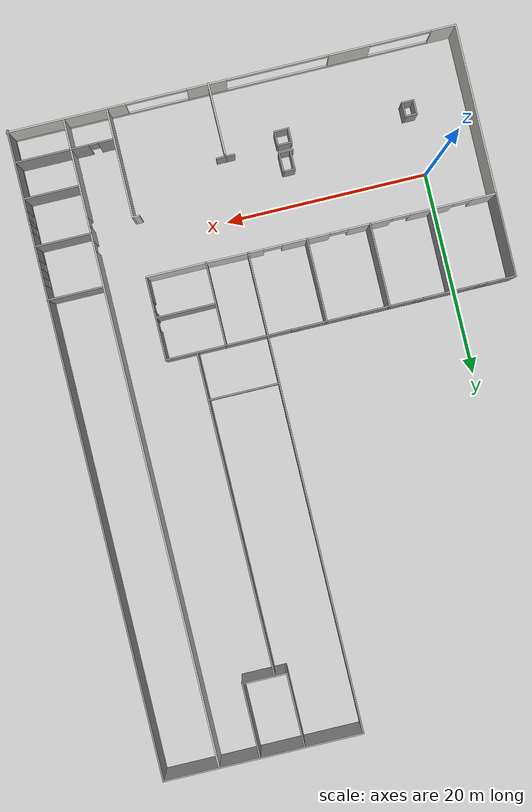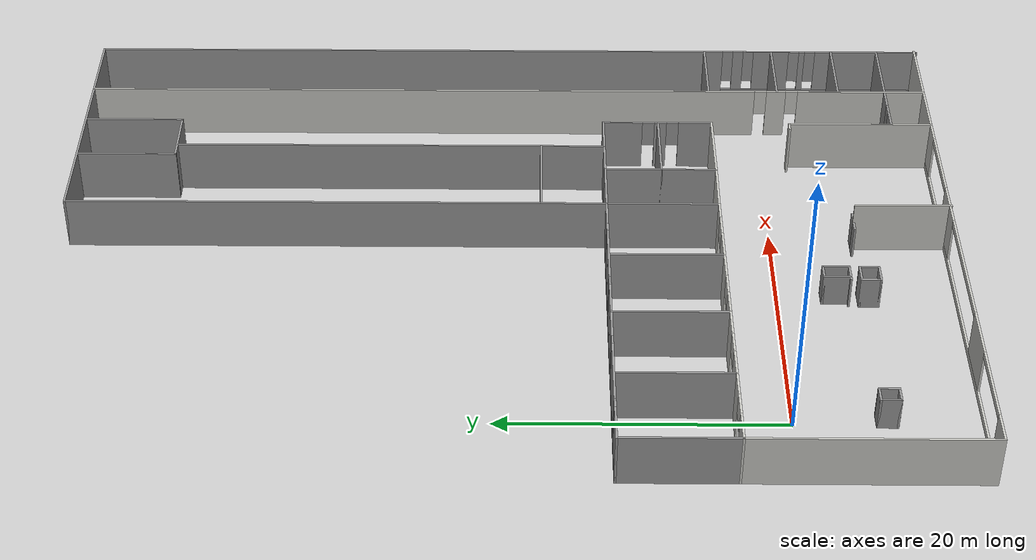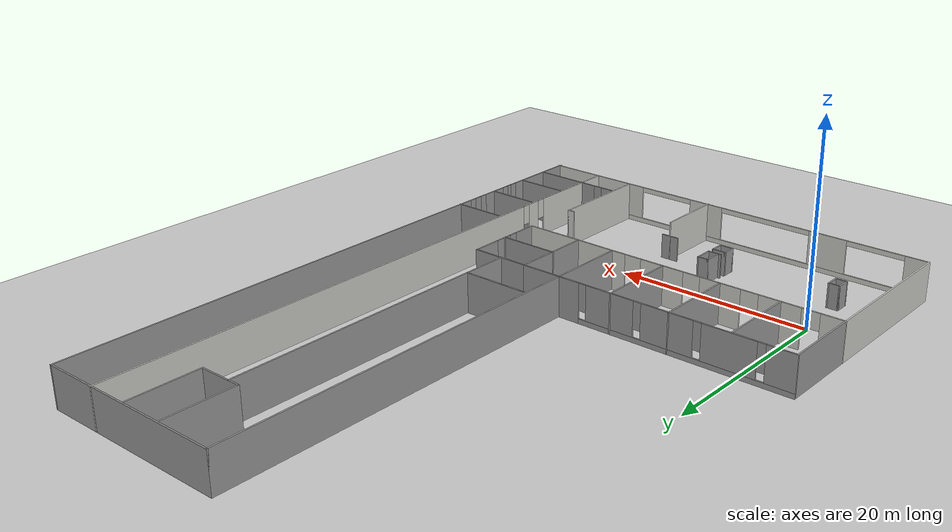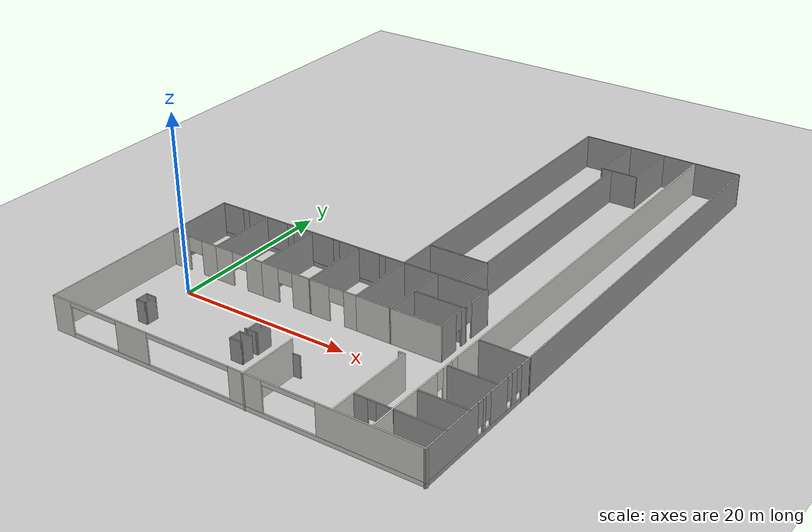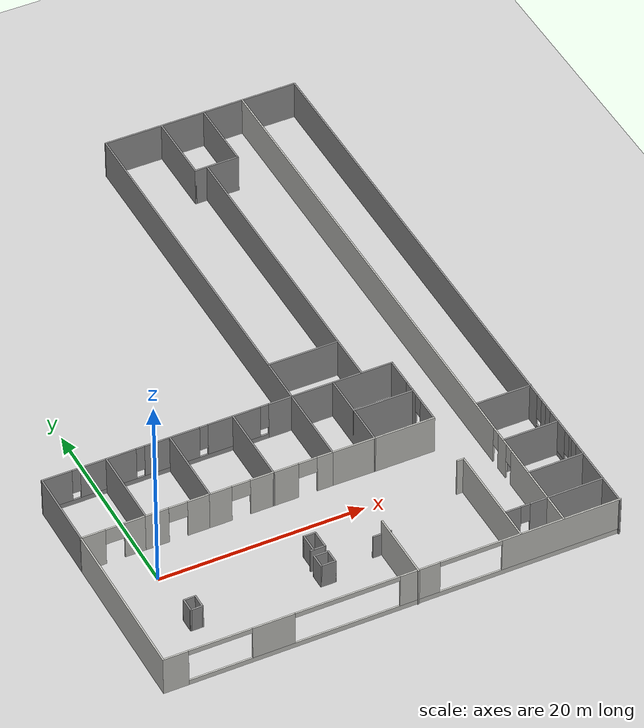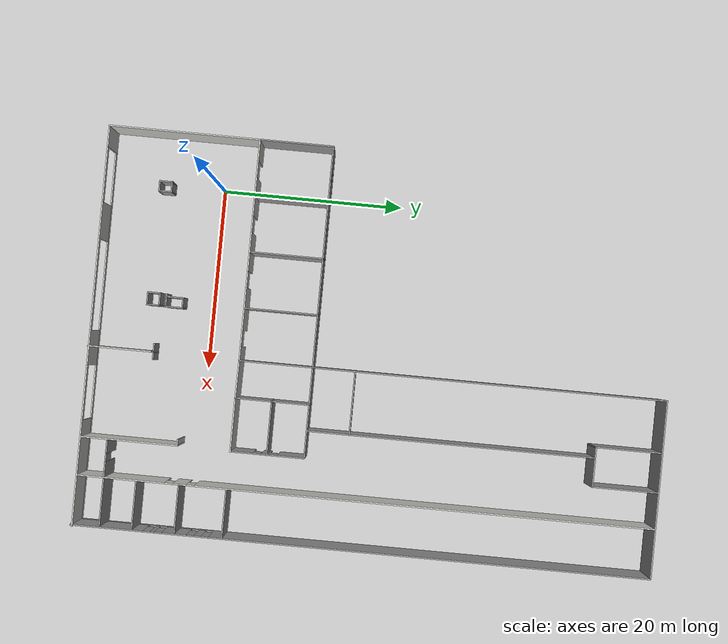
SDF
<sdf version="1.6">
 <world name="default">
  <model name="ground_plane">
   <static>1</static>
   <link name="link">
    <collision name="collision">
     <geometry><plane><normal>0 0 1</normal><size>100 100</size></plane></geometry>
     <surface><friction><ode><mu>100</mu><mu2>50</mu2></ode></friction></surface>
    </collision>
    <visual name="visual">
     <cast_shadows>0</cast_shadows>
     <geometry><plane><normal>0 0 1</normal><size>100 100</size></plane></geometry>
     <material>
      <script><uri>file://media/materials/scripts/gazebo.material</uri><name>Gazebo/Grey</name></script>
     </material>
    </visual>
   </link>
  </model>
  <model name="zjwall">
   <pose>16.5 19.0001 0 0 0 -1.5708</pose>
   <link name="Wall_0">
    <pose>0.0005 21.815 0 0 -0 0</pose>
    <visual name="Wall_0_Visual_0">
     <pose>-7.59115 0 2 0 -0 0</pose>
     <geometry><box><size>48.4977 0.15 4</size></box></geometry>
     <material>
      <script><uri>file://media/materials/scripts/gazebo.material</uri><name>Gazebo/Grey</name></script>
      <ambient>1 1 1 1</ambient>
     </material>
     <meta><layer>0</layer></meta>
    </visual>
    <collision name="Wall_0_Collision_0">
     <geometry><box><size>48.4977 0.15 4</size></box></geometry>
     <pose>-7.59115 0 2 0 -0 0</pose>
    </collision>
    <visual name="Wall_0_Visual_1">
     <pose>24.2489 0 0.25 0 -0 0</pose>
     <geometry><box><size>15.1823 0.15 0.5</size></box></geometry>
     <material>
      <script><uri>file://media/materials/scripts/gazebo.material</uri><name>Gazebo/Grey</name></script>
      <ambient>1 1 1 1</ambient>
     </material>
     <meta><layer>0</layer></meta>
    </visual>
    <collision name="Wall_0_Collision_1">
     <geometry><box><size>15.1823 0.15 0.5</size></box></geometry>
     <pose>24.2489 0 0.25 0 -0 0</pose>
    </collision>
    <visual name="Wall_0_Visual_2">
     <pose>17.8571 0 2.25 0 -0 0</pose>
     <geometry><box><size>0.798874 0.15 3.5</size></box></geometry>
     <material>
      <script><uri>file://media/materials/scripts/gazebo.material</uri><name>Gazebo/Grey</name></script>
      <ambient>1 1 1 1</ambient>
     </material>
     <meta><layer>0</layer></meta>
    </visual>
    <collision name="Wall_0_Collision_2">
     <geometry><box><size>0.798874 0.15 3.5</size></box></geometry>
     <pose>17.8571 0 2.25 0 -0 0</pose>
    </collision>
    <visual name="Wall_0_Visual_3">
     <pose>20.4331 0 2.25 0 -0 0</pose>
     <geometry><box><size>2.75305 0.15 3.5</size></box></geometry>
     <material>
      <script><uri>file://media/materials/scripts/gazebo.material</uri><name>Gazebo/Grey</name></script>
      <ambient>1 1 1 1</ambient>
     </material>
     <meta><layer>0</layer></meta>
    </visual>
    <collision name="Wall_0_Collision_3">
     <geometry><box><size>2.75305 0.15 3.5</size></box></geometry>
     <pose>20.4331 0 2.25 0 -0 0</pose>
    </collision>
    <visual name="Wall_0_Visual_4">
     <pose>22.8314 0 2.25 0 -0 0</pose>
     <geometry><box><size>0.443569 0.15 3.5</size></box></geometry>
     <material>
      <script><uri>file://media/materials/scripts/gazebo.material</uri><name>Gazebo/Grey</name></script>
      <ambient>1 1 1 1</ambient>
     </material>
     <meta><layer>0</layer></meta>
    </visual>
    <collision name="Wall_0_Collision_4">
     <geometry><box><size>0.443569 0.15 3.5</size></box></geometry>
     <pose>22.8314 0 2.25 0 -0 0</pose>
    </collision>
    <visual name="Wall_0_Visual_5">
     <pose>27.8466 0 2.25 0 -0 0</pose>
     <geometry><box><size>7.9868 0.15 3.5</size></box></geometry>
     <material>
      <script><uri>file://media/materials/scripts/gazebo.material</uri><name>Gazebo/Grey</name></script>
      <ambient>1 1 1 1</ambient>
     </material>
     <meta><layer>0</layer></meta>
    </visual>
    <collision name="Wall_0_Collision_5">
     <geometry><box><size>7.9868 0.15 3.5</size></box></geometry>
     <pose>27.8466 0 2.25 0 -0 0</pose>
    </collision>
    <visual name="Wall_0_Visual_6">
     <pose>17.0577 0 2.65 0 -0 0</pose>
     <geometry><box><size>0.8 0.15 2.7</size></box></geometry>
     <material>
      <script><uri>file://media/materials/scripts/gazebo.material</uri><name>Gazebo/Grey</name></script>
      <ambient>1 1 1 1</ambient>
     </material>
     <meta><layer>0</layer></meta>
    </visual>
    <collision name="Wall_0_Collision_6">
     <geometry><box><size>0.8 0.15 2.7</size></box></geometry>
     <pose>17.0577 0 2.65 0 -0 0</pose>
    </collision>
    <visual name="Wall_0_Visual_7">
     <pose>18.6566 0 2.65 0 -0 0</pose>
     <geometry><box><size>0.8 0.15 2.7</size></box></geometry>
     <material>
      <script><uri>file://media/materials/scripts/gazebo.material</uri><name>Gazebo/Grey</name></script>
      <ambient>1 1 1 1</ambient>
     </material>
     <meta><layer>0</layer></meta>
    </visual>
    <collision name="Wall_0_Collision_7">
     <geometry><box><size>0.8 0.15 2.7</size></box></geometry>
     <pose>18.6566 0 2.65 0 -0 0</pose>
    </collision>
    <visual name="Wall_0_Visual_8">
     <pose>22.2096 0 2.65 0 -0 0</pose>
     <geometry><box><size>0.8 0.15 2.7</size></box></geometry>
     <material>
      <script><uri>file://media/materials/scripts/gazebo.material</uri><name>Gazebo/Grey</name></script>
      <ambient>1 1 1 1</ambient>
     </material>
     <meta><layer>0</layer></meta>
    </visual>
    <collision name="Wall_0_Collision_8">
     <geometry><box><size>0.8 0.15 2.7</size></box></geometry>
     <pose>22.2096 0 2.65 0 -0 0</pose>
    </collision>
    <visual name="Wall_0_Visual_9">
     <pose>23.4532 0 2.65 0 -0 0</pose>
     <geometry><box><size>0.8 0.15 2.7</size></box></geometry>
     <material>
      <script><uri>file://media/materials/scripts/gazebo.material</uri><name>Gazebo/Grey</name></script>
      <ambient>1 1 1 1</ambient>
     </material>
     <meta><layer>0</layer></meta>
    </visual>
    <collision name="Wall_0_Collision_9">
     <geometry><box><size>0.8 0.15 2.7</size></box></geometry>
     <pose>23.4532 0 2.65 0 -0 0</pose>
    </collision>
   </link>
   <link name="Wall_104">
    <collision name="Wall_104_Collision">
     <geometry><box><size>1.5 0.15 2.5</size></box></geometry>
     <pose>0 0 1.25 0 -0 0</pose>
    </collision>
    <visual name="Wall_104_Visual">
     <pose>0 0 1.25 0 -0 0</pose>
     <geometry><box><size>1.5 0.15 2.5</size></box></geometry>
     <material>
      <script><uri>file://media/materials/scripts/gazebo.material</uri><name>Gazebo/Grey</name></script>
      <ambient>1 1 1 1</ambient>
     </material>
     <meta><layer>0</layer></meta>
    </visual>
    <pose>23.9911 -3.55705 0 0 -0 1.5708</pose>
   </link>
   <link name="Wall_105">
    <collision name="Wall_105_Collision">
     <geometry><box><size>2 0.15 2.5</size></box></geometry>
     <pose>0 0 1.25 0 -0 0</pose>
    </collision>
    <visual name="Wall_105_Visual">
     <pose>0 0 1.25 0 -0 0</pose>
     <geometry><box><size>2 0.15 2.5</size></box></geometry>
     <material>
      <script><uri>file://media/materials/scripts/gazebo.material</uri><name>Gazebo/Grey</name></script>
      <ambient>1 1 1 1</ambient>
     </material>
     <meta><layer>0</layer></meta>
    </visual>
    <pose>23.0661 -2.88205 0 0 -0 3.14159</pose>
   </link>
   <link name="Wall_107">
    <collision name="Wall_107_Collision">
     <geometry><box><size>1.25 0.15 2.5</size></box></geometry>
     <pose>0 0 1.25 0 -0 0</pose>
    </collision>
    <visual name="Wall_107_Visual">
     <pose>0 0 1.25 0 -0 0</pose>
     <geometry><box><size>1.25 0.15 2.5</size></box></geometry>
     <material>
      <script><uri>file://media/materials/scripts/gazebo.material</uri><name>Gazebo/Grey</name></script>
      <ambient>1 1 1 1</ambient>
     </material>
     <meta><layer>0</layer></meta>
    </visual>
    <pose>22.1411 -3.43205 0 0 -0 -1.5708</pose>
   </link>
   <link name="Wall_108">
    <collision name="Wall_108_Collision">
     <geometry><box><size>2 0.15 2.5</size></box></geometry>
     <pose>0 0 1.25 0 -0 0</pose>
    </collision>
    <visual name="Wall_108_Visual">
     <pose>0 0 1.25 0 -0 0</pose>
     <geometry><box><size>2 0.15 2.5</size></box></geometry>
     <material>
      <script><uri>file://media/materials/scripts/gazebo.material</uri><name>Gazebo/Grey</name></script>
      <ambient>1 1 1 1</ambient>
     </material>
     <meta><layer>0</layer></meta>
    </visual>
    <pose>23.0661 -3.98205 0 0 -0 0</pose>
   </link>
   <link name="Wall_11">
    <pose>31.6155 0 0 0 -0 1.5708</pose>
    <visual name="Wall_11_Visual_0">
     <pose>-20.7907 0 2 0 -0 0</pose>
     <geometry><box><size>2.41853 0.15 4</size></box></geometry>
     <material>
      <script><uri>file://media/materials/scripts/gazebo.material</uri><name>Gazebo/CeilingTiled</name></script>
      <ambient>1 1 1 1</ambient>
     </material>
     <meta><layer>0</layer></meta>
    </visual>
    <collision name="Wall_11_Collision_0">
     <geometry><box><size>2.41853 0.15 4</size></box></geometry>
     <pose>-20.7907 0 2 0 -0 0</pose>
    </collision>
    <visual name="Wall_11_Visual_1">
     <pose>1.20926 0 0.25 0 -0 0</pose>
     <geometry><box><size>41.5815 0.15 0.5</size></box></geometry>
     <material>
      <script><uri>file://media/materials/scripts/gazebo.material</uri><name>Gazebo/CeilingTiled</name></script>
      <ambient>1 1 1 1</ambient>
     </material>
     <meta><layer>0</layer></meta>
    </visual>
    <collision name="Wall_11_Collision_1">
     <geometry><box><size>41.5815 0.15 0.5</size></box></geometry>
     <pose>1.20926 0 0.25 0 -0 0</pose>
    </collision>
    <visual name="Wall_11_Visual_2">
     <pose>-11.559 0 2.25 0 -0 0</pose>
     <geometry><box><size>4.04501 0.15 3.5</size></box></geometry>
     <material>
      <script><uri>file://media/materials/scripts/gazebo.material</uri><name>Gazebo/CeilingTiled</name></script>
      <ambient>1 1 1 1</ambient>
     </material>
     <meta><layer>0</layer></meta>
    </visual>
    <collision name="Wall_11_Collision_2">
     <geometry><box><size>4.04501 0.15 3.5</size></box></geometry>
     <pose>-11.559 0 2.25 0 -0 0</pose>
    </collision>
    <visual name="Wall_11_Visual_3">
     <pose>2.39649 0 2.25 0 -0 0</pose>
     <geometry><box><size>3.8659 0.15 3.5</size></box></geometry>
     <material>
      <script><uri>file://media/materials/scripts/gazebo.material</uri><name>Gazebo/CeilingTiled</name></script>
      <ambient>1 1 1 1</ambient>
     </material>
     <meta><layer>0</layer></meta>
    </visual>
    <collision name="Wall_11_Collision_3">
     <geometry><box><size>3.8659 0.15 3.5</size></box></geometry>
     <pose>2.39649 0 2.25 0 -0 0</pose>
    </collision>
    <visual name="Wall_11_Visual_4">
     <pose>16.1647 0 2.25 0 -0 0</pose>
     <geometry><box><size>11.6706 0.15 3.5</size></box></geometry>
     <material>
      <script><uri>file://media/materials/scripts/gazebo.material</uri><name>Gazebo/CeilingTiled</name></script>
      <ambient>1 1 1 1</ambient>
     </material>
     <meta><layer>0</layer></meta>
    </visual>
    <collision name="Wall_11_Collision_4">
     <geometry><box><size>11.6706 0.15 3.5</size></box></geometry>
     <pose>16.1647 0 2.25 0 -0 0</pose>
    </collision>
    <visual name="Wall_11_Visual_5">
     <pose>-16.5815 0 3.75 0 -0 0</pose>
     <geometry><box><size>6 0.15 0.5</size></box></geometry>
     <material>
      <script><uri>file://media/materials/scripts/gazebo.material</uri><name>Gazebo/CeilingTiled</name></script>
      <ambient>1 1 1 1</ambient>
     </material>
     <meta><layer>0</layer></meta>
    </visual>
    <collision name="Wall_11_Collision_5">
     <geometry><box><size>6 0.15 0.5</size></box></geometry>
     <pose>-16.5815 0 3.75 0 -0 0</pose>
    </collision>
    <visual name="Wall_11_Visual_6">
     <pose>-4.53646 0 3.75 0 -0 0</pose>
     <geometry><box><size>10 0.15 0.5</size></box></geometry>
     <material>
      <script><uri>file://media/materials/scripts/gazebo.material</uri><name>Gazebo/CeilingTiled</name></script>
      <ambient>1 1 1 1</ambient>
     </material>
     <meta><layer>0</layer></meta>
    </visual>
    <collision name="Wall_11_Collision_6">
     <geometry><box><size>10 0.15 0.5</size></box></geometry>
     <pose>-4.53646 0 3.75 0 -0 0</pose>
    </collision>
    <visual name="Wall_11_Visual_7">
     <pose>7.32944 0 3.75 0 -0 0</pose>
     <geometry><box><size>6 0.15 0.5</size></box></geometry>
     <material>
      <script><uri>file://media/materials/scripts/gazebo.material</uri><name>Gazebo/CeilingTiled</name></script>
      <ambient>1 1 1 1</ambient>
     </material>
     <meta><layer>0</layer></meta>
    </visual>
    <collision name="Wall_11_Collision_7">
     <geometry><box><size>6 0.15 0.5</size></box></geometry>
     <pose>7.32944 0 3.75 0 -0 0</pose>
    </collision>
   </link>
   <link name="Wall_110">
    <collision name="Wall_110_Collision">
     <geometry><box><size>1.25 0.15 2.5</size></box></geometry>
     <pose>0 0 1.25 0 -0 0</pose>
    </collision>
    <visual name="Wall_110_Visual">
     <pose>0 0 1.25 0 -0 0</pose>
     <geometry><box><size>1.25 0.15 2.5</size></box></geometry>
     <material>
      <script><uri>file://media/materials/scripts/gazebo.material</uri><name>Gazebo/Grey</name></script>
      <ambient>1 1 1 1</ambient>
     </material>
     <meta><layer>0</layer></meta>
    </visual>
    <pose>24.5599 -16.0944 0 0 -0 -1.5708</pose>
   </link>
   <link name="Wall_111">
    <collision name="Wall_111_Collision">
     <geometry><box><size>1.5 0.15 2.5</size></box></geometry>
     <pose>0 0 1.25 0 -0 0</pose>
    </collision>
    <visual name="Wall_111_Visual">
     <pose>0 0 1.25 0 -0 0</pose>
     <geometry><box><size>1.5 0.15 2.5</size></box></geometry>
     <material>
      <script><uri>file://media/materials/scripts/gazebo.material</uri><name>Gazebo/Grey</name></script>
      <ambient>1 1 1 1</ambient>
     </material>
     <meta><layer>0</layer></meta>
    </visual>
    <pose>25.2349 -16.6444 0 0 -0 0</pose>
   </link>
   <link name="Wall_112">
    <collision name="Wall_112_Collision">
     <geometry><box><size>1.25 0.15 2.5</size></box></geometry>
     <pose>0 0 1.25 0 -0 0</pose>
    </collision>
    <visual name="Wall_112_Visual">
     <pose>0 0 1.25 0 -0 0</pose>
     <geometry><box><size>1.25 0.15 2.5</size></box></geometry>
     <material>
      <script><uri>file://media/materials/scripts/gazebo.material</uri><name>Gazebo/Grey</name></script>
      <ambient>1 1 1 1</ambient>
     </material>
     <meta><layer>0</layer></meta>
    </visual>
    <pose>25.9099 -16.0944 0 0 -0 1.5708</pose>
   </link>
   <link name="Wall_115">
    <collision name="Wall_115_Collision">
     <geometry><box><size>1.5 0.15 2.5</size></box></geometry>
     <pose>0 0 1.25 0 -0 0</pose>
    </collision>
    <visual name="Wall_115_Visual">
     <pose>0 0 1.25 0 -0 0</pose>
     <geometry><box><size>1.5 0.15 2.5</size></box></geometry>
     <material>
      <script><uri>file://media/materials/scripts/gazebo.material</uri><name>Gazebo/Grey</name></script>
      <ambient>1 1 1 1</ambient>
     </material>
     <meta><layer>0</layer></meta>
    </visual>
    <pose>25.2349 -15.5444 0 0 -0 3.14159</pose>
   </link>
   <link name="Wall_117">
    <collision name="Wall_117_Collision">
     <geometry><box><size>1.5 0.15 2.5</size></box></geometry>
     <pose>0 0 1.25 0 -0 0</pose>
    </collision>
    <visual name="Wall_117_Visual">
     <pose>0 0 1.25 0 -0 0</pose>
     <geometry><box><size>1.5 0.15 2.5</size></box></geometry>
     <material>
      <script><uri>file://media/materials/scripts/gazebo.material</uri><name>Gazebo/Grey</name></script>
      <ambient>1 1 1 1</ambient>
     </material>
     <meta><layer>0</layer></meta>
    </visual>
    <pose>24.7261 -3.61102 0 0 -0 -1.5708</pose>
   </link>
   <link name="Wall_118">
    <collision name="Wall_118_Collision">
     <geometry><box><size>1.5 0.15 2.5</size></box></geometry>
     <pose>0 0 1.25 0 -0 0</pose>
    </collision>
    <visual name="Wall_118_Visual">
     <pose>0 0 1.25 0 -0 0</pose>
     <geometry><box><size>1.5 0.15 2.5</size></box></geometry>
     <material>
      <script><uri>file://media/materials/scripts/gazebo.material</uri><name>Gazebo/Grey</name></script>
      <ambient>1 1 1 1</ambient>
     </material>
     <meta><layer>0</layer></meta>
    </visual>
    <pose>25.4011 -4.28602 0 0 -0 0</pose>
   </link>
   <link name="Wall_119">
    <collision name="Wall_119_Collision">
     <geometry><box><size>1.5 0.15 2.5</size></box></geometry>
     <pose>0 0 1.25 0 -0 0</pose>
    </collision>
    <visual name="Wall_119_Visual">
     <pose>0 0 1.25 0 -0 0</pose>
     <geometry><box><size>1.5 0.15 2.5</size></box></geometry>
     <material>
      <script><uri>file://media/materials/scripts/gazebo.material</uri><name>Gazebo/Grey</name></script>
      <ambient>1 1 1 1</ambient>
     </material>
     <meta><layer>0</layer></meta>
    </visual>
    <pose>26.0761 -3.61102 0 0 -0 1.5708</pose>
   </link>
   <link name="Wall_120">
    <collision name="Wall_120_Collision">
     <geometry><box><size>1.5 0.15 2.5</size></box></geometry>
     <pose>0 0 1.25 0 -0 0</pose>
    </collision>
    <visual name="Wall_120_Visual">
     <pose>0 0 1.25 0 -0 0</pose>
     <geometry><box><size>1.5 0.15 2.5</size></box></geometry>
     <material>
      <script><uri>file://media/materials/scripts/gazebo.material</uri><name>Gazebo/Grey</name></script>
      <ambient>1 1 1 1</ambient>
     </material>
     <meta><layer>0</layer></meta>
    </visual>
    <pose>25.4011 -2.93602 0 0 -0 3.14159</pose>
   </link>
   <link name="Wall_122">
    <collision name="Wall_122_Collision">
     <geometry><box><size>1 0.15 2.5</size></box></geometry>
     <pose>0 0 1.25 0 -0 0</pose>
    </collision>
    <visual name="Wall_122_Visual">
     <pose>0 0 1.25 0 -0 0</pose>
     <geometry><box><size>1 0.15 2.5</size></box></geometry>
     <material>
      <script><uri>file://media/materials/scripts/gazebo.material</uri><name>Gazebo/Grey</name></script>
      <ambient>1 1 1 1</ambient>
     </material>
     <meta><layer>0</layer></meta>
    </visual>
    <pose>24.8575 2.641 0 0 -0 1.5708</pose>
   </link>
   <link name="Wall_124">
    <collision name="Wall_124_Collision">
     <geometry><box><size>1 0.15 2.5</size></box></geometry>
     <pose>0 0 1.25 0 -0 0</pose>
    </collision>
    <visual name="Wall_124_Visual">
     <pose>0 0 1.25 0 -0 0</pose>
     <geometry><box><size>1 0.15 2.5</size></box></geometry>
     <material>
      <script><uri>file://media/materials/scripts/gazebo.material</uri><name>Gazebo/Grey</name></script>
      <ambient>1 1 1 1</ambient>
     </material>
     <meta><layer>0</layer></meta>
    </visual>
    <pose>24.8575 1.791 0 0 -0 -1.5708</pose>
   </link>
   <link name="Wall_19">
    <collision name="Wall_19_Collision">
     <geometry><box><size>8.2 0.15 4</size></box></geometry>
     <pose>0 0 2 0 -0 0</pose>
    </collision>
    <visual name="Wall_19_Visual">
     <pose>0 0 2 0 -0 0</pose>
     <geometry><box><size>8.2 0.15 4</size></box></geometry>
     <material>
      <script><uri>file://media/materials/scripts/gazebo.material</uri><name>Gazebo/Grey</name></script>
      <ambient>1 1 1 1</ambient>
     </material>
     <meta><layer>0</layer></meta>
    </visual>
    <pose>11.1105 -21.925 0 0 -0 0</pose>
   </link>
   <link name="Wall_2">
    <collision name="Wall_2_Collision">
     <geometry><box><size>19.68 0.15 4</size></box></geometry>
     <pose>0 0 2 0 -0 0</pose>
    </collision>
    <visual name="Wall_2_Visual">
     <pose>0 0 2 0 -0 0</pose>
     <geometry><box><size>19.68 0.15 4</size></box></geometry>
     <material>
      <script><uri>file://media/materials/scripts/gazebo.material</uri><name>Gazebo/Grey</name></script>
      <ambient>1 1 1 1</ambient>
     </material>
     <meta><layer>0</layer></meta>
    </visual>
    <pose>-31.7645 12.05 0 0 -0 -1.5708</pose>
   </link>
   <link name="Wall_22">
    <pose>15.1355 -18.85 0 0 -0 1.5708</pose>
    <visual name="Wall_22_Visual_0">
     <pose>-1.95853 0 2 0 -0 0</pose>
     <geometry><box><size>2.38295 0.15 4</size></box></geometry>
     <material>
      <script><uri>file://media/materials/scripts/gazebo.material</uri><name>Gazebo/CeilingTiled</name></script>
      <ambient>1 1 1 1</ambient>
     </material>
     <meta><layer>0</layer></meta>
    </visual>
    <collision name="Wall_22_Collision_0">
     <geometry><box><size>2.38295 0.15 4</size></box></geometry>
     <pose>-1.95853 0 2 0 -0 0</pose>
    </collision>
    <visual name="Wall_22_Visual_1">
     <pose>2.09147 0 2 0 -0 0</pose>
     <geometry><box><size>2.11705 0.15 4</size></box></geometry>
     <material>
      <script><uri>file://media/materials/scripts/gazebo.material</uri><name>Gazebo/CeilingTiled</name></script>
      <ambient>1 1 1 1</ambient>
     </material>
     <meta><layer>0</layer></meta>
    </visual>
    <collision name="Wall_22_Collision_1">
     <geometry><box><size>2.11705 0.15 4</size></box></geometry>
     <pose>2.09147 0 2 0 -0 0</pose>
    </collision>
    <visual name="Wall_22_Visual_2">
     <pose>0.132951 0 3.15 0 -0 0</pose>
     <geometry><box><size>1.8 0.15 1.7</size></box></geometry>
     <material>
      <script><uri>file://media/materials/scripts/gazebo.material</uri><name>Gazebo/CeilingTiled</name></script>
      <ambient>1 1 1 1</ambient>
     </material>
     <meta><layer>0</layer></meta>
    </visual>
    <collision name="Wall_22_Collision_2">
     <geometry><box><size>1.8 0.15 1.7</size></box></geometry>
     <pose>0.132951 0 3.15 0 -0 0</pose>
    </collision>
   </link>
   <link name="Wall_24">
    <collision name="Wall_24_Collision">
     <geometry><box><size>8.2 0.15 4</size></box></geometry>
     <pose>0 0 2 0 -0 0</pose>
    </collision>
    <visual name="Wall_24_Visual">
     <pose>0 0 2 0 -0 0</pose>
     <geometry><box><size>8.2 0.15 4</size></box></geometry>
     <material>
      <script><uri>file://media/materials/scripts/gazebo.material</uri><name>Gazebo/Grey</name></script>
      <ambient>1 1 1 1</ambient>
     </material>
     <meta><layer>0</layer></meta>
    </visual>
    <pose>11.1105 -15.775 0 0 -0 3.14159</pose>
   </link>
   <link name="Wall_26">
    <pose>15.1355 -12.7 0 0 -0 1.5708</pose>
    <visual name="Wall_26_Visual_0">
     <pose>-2.02018 0 2 0 -0 0</pose>
     <geometry><box><size>2.25964 0.15 4</size></box></geometry>
     <material>
      <script><uri>file://media/materials/scripts/gazebo.material</uri><name>Gazebo/CeilingTiled</name></script>
      <ambient>1 1 1 1</ambient>
     </material>
     <meta><layer>0</layer></meta>
    </visual>
    <collision name="Wall_26_Collision_0">
     <geometry><box><size>2.25964 0.15 4</size></box></geometry>
     <pose>-2.02018 0 2 0 -0 0</pose>
    </collision>
    <visual name="Wall_26_Visual_1">
     <pose>2.02982 0 2 0 -0 0</pose>
     <geometry><box><size>2.24036 0.15 4</size></box></geometry>
     <material>
      <script><uri>file://media/materials/scripts/gazebo.material</uri><name>Gazebo/CeilingTiled</name></script>
      <ambient>1 1 1 1</ambient>
     </material>
     <meta><layer>0</layer></meta>
    </visual>
    <collision name="Wall_26_Collision_1">
     <geometry><box><size>2.24036 0.15 4</size></box></geometry>
     <pose>2.02982 0 2 0 -0 0</pose>
    </collision>
    <visual name="Wall_26_Visual_2">
     <pose>0.009645 0 3.15 0 -0 0</pose>
     <geometry><box><size>1.8 0.15 1.7</size></box></geometry>
     <material>
      <script><uri>file://media/materials/scripts/gazebo.material</uri><name>Gazebo/CeilingTiled</name></script>
      <ambient>1 1 1 1</ambient>
     </material>
     <meta><layer>0</layer></meta>
    </visual>
    <collision name="Wall_26_Collision_2">
     <geometry><box><size>1.8 0.15 1.7</size></box></geometry>
     <pose>0.009645 0 3.15 0 -0 0</pose>
    </collision>
   </link>
   <link name="Wall_28">
    <collision name="Wall_28_Collision">
     <geometry><box><size>8.2 0.15 4</size></box></geometry>
     <pose>0 0 2 0 -0 0</pose>
    </collision>
    <visual name="Wall_28_Visual">
     <pose>0 0 2 0 -0 0</pose>
     <geometry><box><size>8.2 0.15 4</size></box></geometry>
     <material>
      <script><uri>file://media/materials/scripts/gazebo.material</uri><name>Gazebo/Grey</name></script>
      <ambient>1 1 1 1</ambient>
     </material>
     <meta><layer>0</layer></meta>
    </visual>
    <pose>11.1105 -9.625 0 0 -0 3.14159</pose>
   </link>
   <link name="Wall_30">
    <pose>15.1355 -6.55 0 0 -0 1.5708</pose>
    <visual name="Wall_30_Visual_0">
     <pose>-2.0649 0 2 0 -0 0</pose>
     <geometry><box><size>2.1702 0.15 4</size></box></geometry>
     <material>
      <script><uri>file://media/materials/scripts/gazebo.material</uri><name>Gazebo/CeilingTiled</name></script>
      <ambient>1 1 1 1</ambient>
     </material>
     <meta><layer>0</layer></meta>
    </visual>
    <collision name="Wall_30_Collision_0">
     <geometry><box><size>2.1702 0.15 4</size></box></geometry>
     <pose>-2.0649 0 2 0 -0 0</pose>
    </collision>
    <visual name="Wall_30_Visual_1">
     <pose>1.9851 0 2 0 -0 0</pose>
     <geometry><box><size>2.3298 0.15 4</size></box></geometry>
     <material>
      <script><uri>file://media/materials/scripts/gazebo.material</uri><name>Gazebo/CeilingTiled</name></script>
      <ambient>1 1 1 1</ambient>
     </material>
     <meta><layer>0</layer></meta>
    </visual>
    <collision name="Wall_30_Collision_1">
     <geometry><box><size>2.3298 0.15 4</size></box></geometry>
     <pose>1.9851 0 2 0 -0 0</pose>
    </collision>
    <visual name="Wall_30_Visual_2">
     <pose>-0.079803 0 3.15 0 -0 0</pose>
     <geometry><box><size>1.8 0.15 1.7</size></box></geometry>
     <material>
      <script><uri>file://media/materials/scripts/gazebo.material</uri><name>Gazebo/CeilingTiled</name></script>
      <ambient>1 1 1 1</ambient>
     </material>
     <meta><layer>0</layer></meta>
    </visual>
    <collision name="Wall_30_Collision_2">
     <geometry><box><size>1.8 0.15 1.7</size></box></geometry>
     <pose>-0.079803 0 3.15 0 -0 0</pose>
    </collision>
   </link>
   <link name="Wall_32">
    <collision name="Wall_32_Collision">
     <geometry><box><size>8.2 0.15 4</size></box></geometry>
     <pose>0 0 2 0 -0 0</pose>
    </collision>
    <visual name="Wall_32_Visual">
     <pose>0 0 2 0 -0 0</pose>
     <geometry><box><size>8.2 0.15 4</size></box></geometry>
     <material>
      <script><uri>file://media/materials/scripts/gazebo.material</uri><name>Gazebo/Grey</name></script>
      <ambient>1 1 1 1</ambient>
     </material>
     <meta><layer>0</layer></meta>
    </visual>
    <pose>11.1105 -3.475 0 0 -0 3.14159</pose>
   </link>
   <link name="Wall_34">
    <collision name="Wall_34_Collision">
     <geometry><box><size>8.2 0.15 4</size></box></geometry>
     <pose>0 0 2 0 -0 0</pose>
    </collision>
    <visual name="Wall_34_Visual">
     <pose>0 0 2 0 -0 0</pose>
     <geometry><box><size>8.2 0.15 4</size></box></geometry>
     <material>
      <script><uri>file://media/materials/scripts/gazebo.material</uri><name>Gazebo/Grey</name></script>
      <ambient>1 1 1 1</ambient>
     </material>
     <meta><layer>0</layer></meta>
    </visual>
    <pose>11.1105 2.285 0 0 -0 0</pose>
   </link>
   <link name="Wall_36">
    <pose>15.1355 -0.595 0 0 -0 -1.5708</pose>
    <visual name="Wall_36_Visual_0">
     <pose>-2.15825 0 2 0 -0 0</pose>
     <geometry><box><size>1.59351 0.15 4</size></box></geometry>
     <material>
      <script><uri>file://media/materials/scripts/gazebo.material</uri><name>Gazebo/CeilingTiled</name></script>
      <ambient>1 1 1 1</ambient>
     </material>
     <meta><layer>0</layer></meta>
    </visual>
    <collision name="Wall_36_Collision_0">
     <geometry><box><size>1.59351 0.15 4</size></box></geometry>
     <pose>-2.15825 0 2 0 -0 0</pose>
    </collision>
    <visual name="Wall_36_Visual_1">
     <pose>1.69675 0 2 0 -0 0</pose>
     <geometry><box><size>2.51649 0.15 4</size></box></geometry>
     <material>
      <script><uri>file://media/materials/scripts/gazebo.material</uri><name>Gazebo/CeilingTiled</name></script>
      <ambient>1 1 1 1</ambient>
     </material>
     <meta><layer>0</layer></meta>
    </visual>
    <collision name="Wall_36_Collision_1">
     <geometry><box><size>2.51649 0.15 4</size></box></geometry>
     <pose>1.69675 0 2 0 -0 0</pose>
    </collision>
    <visual name="Wall_36_Visual_2">
     <pose>-0.461493 0 3.15 0 -0 0</pose>
     <geometry><box><size>1.8 0.15 1.7</size></box></geometry>
     <material>
      <script><uri>file://media/materials/scripts/gazebo.material</uri><name>Gazebo/CeilingTiled</name></script>
      <ambient>1 1 1 1</ambient>
     </material>
     <meta><layer>0</layer></meta>
    </visual>
    <collision name="Wall_36_Collision_2">
     <geometry><box><size>1.8 0.15 1.7</size></box></geometry>
     <pose>-0.461493 0 3.15 0 -0 0</pose>
    </collision>
   </link>
   <link name="Wall_38">
    <collision name="Wall_38_Collision">
     <geometry><box><size>16.63 0.15 4</size></box></geometry>
     <pose>0 0 2 0 -0 0</pose>
    </collision>
    <visual name="Wall_38_Visual">
     <pose>0 0 2 0 -0 0</pose>
     <geometry><box><size>16.63 0.15 4</size></box></geometry>
     <material>
      <script><uri>file://media/materials/scripts/gazebo.material</uri><name>Gazebo/CeilingTiled</name></script>
      <ambient>1 1 1 1</ambient>
     </material>
     <meta><layer>0</layer></meta>
    </visual>
    <pose>23.3755 -21.925 0 0 -0 0</pose>
   </link>
   <link name="Wall_4">
    <collision name="Wall_4_Collision">
     <geometry><box><size>39 0.15 4</size></box></geometry>
     <pose>0 0 2 0 -0 0</pose>
    </collision>
    <visual name="Wall_4_Visual">
     <pose>0 0 2 0 -0 0</pose>
     <geometry><box><size>39 0.15 4</size></box></geometry>
     <material>
      <script><uri>file://media/materials/scripts/gazebo.material</uri><name>Gazebo/Grey</name></script>
      <ambient>1 1 1 1</ambient>
     </material>
     <meta><layer>0</layer></meta>
    </visual>
    <pose>-12.3395 2.285 0 0 -0 0</pose>
   </link>
   <link name="Wall_40">
    <pose>-0.0905 16.365 0 0 -0 0</pose>
    <visual name="Wall_40_Visual_0">
     <pose>-6.45973 0 2 0 -0 0</pose>
     <geometry><box><size>50.5805 0.15 4</size></box></geometry>
     <material>
      <script><uri>file://media/materials/scripts/gazebo.material</uri><name>Gazebo/CeilingTiled</name></script>
      <ambient>1 1 1 1</ambient>
     </material>
     <meta><layer>0</layer></meta>
    </visual>
    <collision name="Wall_40_Collision_0">
     <geometry><box><size>50.5805 0.15 4</size></box></geometry>
     <pose>-6.45973 0 2 0 -0 0</pose>
    </collision>
    <visual name="Wall_40_Visual_1">
     <pose>20.4649 0 2 0 -0 0</pose>
     <geometry><box><size>1.4687 0.15 4</size></box></geometry>
     <material>
      <script><uri>file://media/materials/scripts/gazebo.material</uri><name>Gazebo/CeilingTiled</name></script>
      <ambient>1 1 1 1</ambient>
     </material>
     <meta><layer>0</layer></meta>
    </visual>
    <collision name="Wall_40_Collision_1">
     <geometry><box><size>1.4687 0.15 4</size></box></geometry>
     <pose>20.4649 0 2 0 -0 0</pose>
    </collision>
    <visual name="Wall_40_Visual_2">
     <pose>26.9246 0 2 0 -0 0</pose>
     <geometry><box><size>9.65076 0.15 4</size></box></geometry>
     <material>
      <script><uri>file://media/materials/scripts/gazebo.material</uri><name>Gazebo/CeilingTiled</name></script>
      <ambient>1 1 1 1</ambient>
     </material>
     <meta><layer>0</layer></meta>
    </visual>
    <collision name="Wall_40_Collision_2">
     <geometry><box><size>9.65076 0.15 4</size></box></geometry>
     <pose>26.9246 0 2 0 -0 0</pose>
    </collision>
    <visual name="Wall_40_Visual_3">
     <pose>19.2805 0 3 0 -0 0</pose>
     <geometry><box><size>0.9 0.15 2</size></box></geometry>
     <material>
      <script><uri>file://media/materials/scripts/gazebo.material</uri><name>Gazebo/CeilingTiled</name></script>
      <ambient>1 1 1 1</ambient>
     </material>
     <meta><layer>0</layer></meta>
    </visual>
    <collision name="Wall_40_Collision_3">
     <geometry><box><size>0.9 0.15 2</size></box></geometry>
     <pose>19.2805 0 3 0 -0 0</pose>
    </collision>
    <visual name="Wall_40_Visual_4">
     <pose>21.6492 0 3 0 -0 0</pose>
     <geometry><box><size>0.9 0.15 2</size></box></geometry>
     <material>
      <script><uri>file://media/materials/scripts/gazebo.material</uri><name>Gazebo/CeilingTiled</name></script>
      <ambient>1 1 1 1</ambient>
     </material>
     <meta><layer>0</layer></meta>
    </visual>
    <collision name="Wall_40_Collision_4">
     <geometry><box><size>0.9 0.15 2</size></box></geometry>
     <pose>21.6492 0 3 0 -0 0</pose>
    </collision>
   </link>
   <link name="Wall_42">
    <collision name="Wall_42_Collision">
     <geometry><box><size>4.25 0.15 4</size></box></geometry>
     <pose>0 0 2 0 -0 0</pose>
    </collision>
    <visual name="Wall_42_Visual">
     <pose>0 0 2 0 -0 0</pose>
     <geometry><box><size>4.25 0.15 4</size></box></geometry>
     <material>
      <script><uri>file://media/materials/scripts/gazebo.material</uri><name>Gazebo/Grey</name></script>
      <ambient>1 1 1 1</ambient>
     </material>
     <meta><layer>0</layer></meta>
    </visual>
    <pose>7.0855 4.335 0 0 -0 1.5708</pose>
   </link>
   <link name="Wall_43">
    <collision name="Wall_43_Collision">
     <geometry><box><size>8.25 0.15 4</size></box></geometry>
     <pose>0 0 2 0 -0 0</pose>
    </collision>
    <visual name="Wall_43_Visual">
     <pose>0 0 2 0 -0 0</pose>
     <geometry><box><size>8.25 0.15 4</size></box></geometry>
     <material>
      <script><uri>file://media/materials/scripts/gazebo.material</uri><name>Gazebo/Grey</name></script>
      <ambient>1 1 1 1</ambient>
     </material>
     <meta><layer>0</layer></meta>
    </visual>
    <pose>11.1355 6.385 0 0 -0 0</pose>
   </link>
   <link name="Wall_44">
    <collision name="Wall_44_Collision">
     <geometry><box><size>4.2503 0.15 4</size></box></geometry>
     <pose>0 0 2 0 -0 0</pose>
    </collision>
    <visual name="Wall_44_Visual">
     <pose>0 0 2 0 -0 0</pose>
     <geometry><box><size>4.2503 0.15 4</size></box></geometry>
     <material>
      <script><uri>file://media/materials/scripts/gazebo.material</uri><name>Gazebo/CeilingTiled</name></script>
      <ambient>1 1 1 1</ambient>
     </material>
     <meta><layer>0</layer></meta>
    </visual>
    <pose>15.1605 4.335 0 0 -0 -1.58299</pose>
   </link>
   <link name="Wall_46">
    <collision name="Wall_46_Collision">
     <geometry><box><size>6 0.15 4</size></box></geometry>
     <pose>0 0 2 0 -0 0</pose>
    </collision>
    <visual name="Wall_46_Visual">
     <pose>0 0 2 0 -0 0</pose>
     <geometry><box><size>6 0.15 4</size></box></geometry>
     <material>
      <script><uri>file://media/materials/scripts/gazebo.material</uri><name>Gazebo/Grey</name></script>
      <ambient>1 1 1 1</ambient>
     </material>
     <meta><layer>0</layer></meta>
    </visual>
    <pose>7.0855 9.31 0 0 -0 1.5708</pose>
   </link>
   <link name="Wall_47">
    <pose>9.1355 12.235 0 0 -0 0</pose>
    <visual name="Wall_47_Visual_0">
     <pose>-0.623127 0 2 0 -0 0</pose>
     <geometry><box><size>3.00375 0.15 4</size></box></geometry>
     <material>
      <script><uri>file://media/materials/scripts/gazebo.material</uri><name>Gazebo/Grey</name></script>
      <ambient>1 1 1 1</ambient>
     </material>
     <meta><layer>0</layer></meta>
    </visual>
    <collision name="Wall_47_Collision_0">
     <geometry><box><size>3.00375 0.15 4</size></box></geometry>
     <pose>-0.623127 0 2 0 -0 0</pose>
    </collision>
    <visual name="Wall_47_Visual_1">
     <pose>1.95187 0 2 0 -0 0</pose>
     <geometry><box><size>0.346254 0.15 4</size></box></geometry>
     <material>
      <script><uri>file://media/materials/scripts/gazebo.material</uri><name>Gazebo/Grey</name></script>
      <ambient>1 1 1 1</ambient>
     </material>
     <meta><layer>0</layer></meta>
    </visual>
    <collision name="Wall_47_Collision_1">
     <geometry><box><size>0.346254 0.15 4</size></box></geometry>
     <pose>1.95187 0 2 0 -0 0</pose>
    </collision>
    <visual name="Wall_47_Visual_2">
     <pose>1.32875 0 3 0 -0 0</pose>
     <geometry><box><size>0.9 0.15 2</size></box></geometry>
     <material>
      <script><uri>file://media/materials/scripts/gazebo.material</uri><name>Gazebo/Grey</name></script>
      <ambient>1 1 1 1</ambient>
     </material>
     <meta><layer>0</layer></meta>
    </visual>
    <collision name="Wall_47_Collision_2">
     <geometry><box><size>0.9 0.15 2</size></box></geometry>
     <pose>1.32875 0 3 0 -0 0</pose>
    </collision>
   </link>
   <link name="Wall_48">
    <collision name="Wall_48_Collision">
     <geometry><box><size>6 0.15 4</size></box></geometry>
     <pose>0 0 2 0 -0 0</pose>
    </collision>
    <visual name="Wall_48_Visual">
     <pose>0 0 2 0 -0 0</pose>
     <geometry><box><size>6 0.15 4</size></box></geometry>
     <material>
      <script><uri>file://media/materials/scripts/gazebo.material</uri><name>Gazebo/Grey</name></script>
      <ambient>1 1 1 1</ambient>
     </material>
     <meta><layer>0</layer></meta>
    </visual>
    <pose>11.1855 9.31 0 0 -0 -1.5708</pose>
   </link>
   <link name="Wall_50">
    <pose>13.1105 12.235 0 0 -0 0</pose>
    <visual name="Wall_50_Visual_0">
     <pose>-1.64699 0 2 0 -0 0</pose>
     <geometry><box><size>0.706019 0.15 4</size></box></geometry>
     <material>
      <script><uri>file://media/materials/scripts/gazebo.material</uri><name>Gazebo/Grey</name></script>
      <ambient>1 1 1 1</ambient>
     </material>
     <meta><layer>0</layer></meta>
    </visual>
    <collision name="Wall_50_Collision_0">
     <geometry><box><size>0.706019 0.15 4</size></box></geometry>
     <pose>-1.64699 0 2 0 -0 0</pose>
    </collision>
    <visual name="Wall_50_Visual_1">
     <pose>0.80301 0 2 0 -0 0</pose>
     <geometry><box><size>2.39398 0.15 4</size></box></geometry>
     <material>
      <script><uri>file://media/materials/scripts/gazebo.material</uri><name>Gazebo/Grey</name></script>
      <ambient>1 1 1 1</ambient>
     </material>
     <meta><layer>0</layer></meta>
    </visual>
    <collision name="Wall_50_Collision_1">
     <geometry><box><size>2.39398 0.15 4</size></box></geometry>
     <pose>0.80301 0 2 0 -0 0</pose>
    </collision>
    <visual name="Wall_50_Visual_2">
     <pose>-0.843981 0 3 0 -0 0</pose>
     <geometry><box><size>0.9 0.15 2</size></box></geometry>
     <material>
      <script><uri>file://media/materials/scripts/gazebo.material</uri><name>Gazebo/Grey</name></script>
      <ambient>1 1 1 1</ambient>
     </material>
     <meta><layer>0</layer></meta>
    </visual>
    <collision name="Wall_50_Collision_2">
     <geometry><box><size>0.9 0.15 2</size></box></geometry>
     <pose>-0.843981 0 3 0 -0 0</pose>
    </collision>
   </link>
   <link name="Wall_52">
    <collision name="Wall_52_Collision">
     <geometry><box><size>6 0.15 4</size></box></geometry>
     <pose>0 0 2 0 -0 0</pose>
    </collision>
    <visual name="Wall_52_Visual">
     <pose>0 0 2 0 -0 0</pose>
     <geometry><box><size>6 0.15 4</size></box></geometry>
     <material>
      <script><uri>file://media/materials/scripts/gazebo.material</uri><name>Gazebo/CeilingTiled</name></script>
      <ambient>1 1 1 1</ambient>
     </material>
     <meta><layer>0</layer></meta>
    </visual>
    <pose>15.1855 9.31 0 0 -0 1.5708</pose>
   </link>
   <link name="Wall_54">
    <collision name="Wall_54_Collision">
     <geometry><box><size>10.75 0.15 4</size></box></geometry>
     <pose>0 0 2 0 -0 0</pose>
    </collision>
    <visual name="Wall_54_Visual">
     <pose>0 0 2 0 -0 0</pose>
     <geometry><box><size>10.75 0.15 4</size></box></geometry>
     <material>
      <script><uri>file://media/materials/scripts/gazebo.material</uri><name>Gazebo/CeilingTiled</name></script>
      <ambient>1 1 1 1</ambient>
     </material>
     <meta><layer>0</layer></meta>
    </visual>
    <pose>26.3065 12.151 0 0 -0 3.14159</pose>
   </link>
   <link name="Wall_55">
    <collision name="Wall_55_Collision">
     <geometry><box><size>0.75 0.15 4</size></box></geometry>
     <pose>0 0 2 0 -0 0</pose>
    </collision>
    <visual name="Wall_55_Visual">
     <pose>0 0 2 0 -0 0</pose>
     <geometry><box><size>0.75 0.15 4</size></box></geometry>
     <material>
      <script><uri>file://media/materials/scripts/gazebo.material</uri><name>Gazebo/CeilingTiled</name></script>
      <ambient>1 1 1 1</ambient>
     </material>
     <meta><layer>0</layer></meta>
    </visual>
    <pose>21.0065 11.851 0 0 -0 -1.5708</pose>
   </link>
   <link name="Wall_57">
    <collision name="Wall_57_Collision">
     <geometry><box><size>7 0.15 4</size></box></geometry>
     <pose>0 0 2 0 -0 0</pose>
    </collision>
    <visual name="Wall_57_Visual">
     <pose>0 0 2 0 -0 0</pose>
     <geometry><box><size>7 0.15 4</size></box></geometry>
     <material>
      <script><uri>file://media/materials/scripts/gazebo.material</uri><name>Gazebo/CeilingTiled</name></script>
      <ambient>1 1 1 1</ambient>
     </material>
     <meta><layer>0</layer></meta>
    </visual>
    <pose>28.2825 2.216 0 0 -0 3.14159</pose>
   </link>
   <link name="Wall_59">
    <collision name="Wall_59_Collision">
     <geometry><box><size>4.75 0.15 4</size></box></geometry>
     <pose>0 0 2 0 -0 0</pose>
    </collision>
    <visual name="Wall_59_Visual">
     <pose>0 0 2 0 -0 0</pose>
     <geometry><box><size>4.75 0.15 4</size></box></geometry>
     <material>
      <script><uri>file://media/materials/scripts/gazebo.material</uri><name>Gazebo/Grey</name></script>
      <ambient>1 1 1 1</ambient>
     </material>
     <meta><layer>0</layer></meta>
    </visual>
    <pose>4.7205 9.212 0 0 -0 3.14159</pose>
   </link>
   <link name="Wall_60">
    <collision name="Wall_60_Collision">
     <geometry><box><size>7 0.15 4</size></box></geometry>
     <pose>0 0 2 0 -0 0</pose>
    </collision>
    <visual name="Wall_60_Visual">
     <pose>0 0 2 0 -0 0</pose>
     <geometry><box><size>7 0.15 4</size></box></geometry>
     <material>
      <script><uri>file://media/materials/scripts/gazebo.material</uri><name>Gazebo/Grey</name></script>
      <ambient>1 1 1 1</ambient>
     </material>
     <meta><layer>0</layer></meta>
    </visual>
    <pose>2.4205 5.787 0 0 -0 -1.5708</pose>
   </link>
   <link name="Wall_62">
    <collision name="Wall_62_Collision">
     <geometry><box><size>7.25 0.15 4</size></box></geometry>
     <pose>0 0 2 0 -0 0</pose>
    </collision>
    <visual name="Wall_62_Visual">
     <pose>0 0 2 0 -0 0</pose>
     <geometry><box><size>7.25 0.15 4</size></box></geometry>
     <material>
      <script><uri>file://media/materials/scripts/gazebo.material</uri><name>Gazebo/Grey</name></script>
      <ambient>1 1 1 1</ambient>
     </material>
     <meta><layer>0</layer></meta>
    </visual>
    <pose>-28.0665 12.362 0 0 -0 0</pose>
   </link>
   <link name="Wall_63">
    <collision name="Wall_63_Collision">
     <geometry><box><size>4.5 0.15 4</size></box></geometry>
     <pose>0 0 2 0 -0 0</pose>
    </collision>
    <visual name="Wall_63_Visual">
     <pose>0 0 2 0 -0 0</pose>
     <geometry><box><size>4.5 0.15 4</size></box></geometry>
     <material>
      <script><uri>file://media/materials/scripts/gazebo.material</uri><name>Gazebo/Grey</name></script>
      <ambient>1 1 1 1</ambient>
     </material>
     <meta><layer>0</layer></meta>
    </visual>
    <pose>-24.5165 10.187 0 0 -0 -1.5708</pose>
   </link>
   <link name="Wall_64">
    <collision name="Wall_64_Collision">
     <geometry><box><size>7.25 0.15 4</size></box></geometry>
     <pose>0 0 2 0 -0 0</pose>
    </collision>
    <visual name="Wall_64_Visual">
     <pose>0 0 2 0 -0 0</pose>
     <geometry><box><size>7.25 0.15 4</size></box></geometry>
     <material>
      <script><uri>file://media/materials/scripts/gazebo.material</uri><name>Gazebo/Grey</name></script>
      <ambient>1 1 1 1</ambient>
     </material>
     <meta><layer>0</layer></meta>
    </visual>
    <pose>-28.0665 8.012 0 0 -0 3.14159</pose>
   </link>
   <link name="Wall_66">
    <collision name="Wall_66_Collision">
     <geometry><box><size>27 0.15 4</size></box></geometry>
     <pose>0 0 2 0 -0 0</pose>
    </collision>
    <visual name="Wall_66_Visual">
     <pose>0 0 2 0 -0 0</pose>
     <geometry><box><size>27 0.15 4</size></box></geometry>
     <material>
      <script><uri>file://media/materials/scripts/gazebo.material</uri><name>Gazebo/Grey</name></script>
      <ambient>1 1 1 1</ambient>
     </material>
     <meta><layer>0</layer></meta>
    </visual>
    <pose>-11.0045 9.212 0 0 -0 3.14159</pose>
   </link>
   <link name="Wall_68">
    <pose>28.6385 14.358 0 0 -0 -1.5708</pose>
    <visual name="Wall_68_Visual_0">
     <pose>-1.20061 0 2 0 -0 0</pose>
     <geometry><box><size>1.84879 0.15 4</size></box></geometry>
     <material>
      <script><uri>file://media/materials/scripts/gazebo.material</uri><name>Gazebo/Grey</name></script>
      <ambient>1 1 1 1</ambient>
     </material>
     <meta><layer>0</layer></meta>
    </visual>
    <collision name="Wall_68_Collision_0">
     <geometry><box><size>1.84879 0.15 4</size></box></geometry>
     <pose>-1.20061 0 2 0 -0 0</pose>
    </collision>
    <visual name="Wall_68_Visual_1">
     <pose>1.37439 0 2 0 -0 0</pose>
     <geometry><box><size>1.50121 0.15 4</size></box></geometry>
     <material>
      <script><uri>file://media/materials/scripts/gazebo.material</uri><name>Gazebo/Grey</name></script>
      <ambient>1 1 1 1</ambient>
     </material>
     <meta><layer>0</layer></meta>
    </visual>
    <collision name="Wall_68_Collision_1">
     <geometry><box><size>1.50121 0.15 4</size></box></geometry>
     <pose>1.37439 0 2 0 -0 0</pose>
    </collision>
    <visual name="Wall_68_Visual_2">
     <pose>0.173786 0 3 0 -0 0</pose>
     <geometry><box><size>0.9 0.15 2</size></box></geometry>
     <material>
      <script><uri>file://media/materials/scripts/gazebo.material</uri><name>Gazebo/Grey</name></script>
      <ambient>1 1 1 1</ambient>
     </material>
     <meta><layer>0</layer></meta>
    </visual>
    <collision name="Wall_68_Collision_2">
     <geometry><box><size>0.9 0.15 2</size></box></geometry>
     <pose>0.173786 0 3 0 -0 0</pose>
    </collision>
   </link>
   <link name="Wall_7">
    <pose>7.0855 -9.82 0 0 -0 -1.5708</pose>
    <visual name="Wall_7_Visual_0">
     <pose>-10.9956 0 2 0 -0 0</pose>
     <geometry><box><size>2.36874 0.15 4</size></box></geometry>
     <material>
      <script><uri>file://media/materials/scripts/gazebo.material</uri><name>Gazebo/Grey</name></script>
      <ambient>1 1 1 1</ambient>
     </material>
     <meta><layer>0</layer></meta>
    </visual>
    <collision name="Wall_7_Collision_0">
     <geometry><box><size>2.36874 0.15 4</size></box></geometry>
     <pose>-10.9956 0 2 0 -0 0</pose>
    </collision>
    <visual name="Wall_7_Visual_1">
     <pose>1.18437 0 0.25 0 -0 0</pose>
     <geometry><box><size>21.9913 0.15 0.5</size></box></geometry>
     <material>
      <script><uri>file://media/materials/scripts/gazebo.material</uri><name>Gazebo/Grey</name></script>
      <ambient>1 1 1 1</ambient>
     </material>
     <meta><layer>0</layer></meta>
    </visual>
    <collision name="Wall_7_Collision_1">
     <geometry><box><size>21.9913 0.15 0.5</size></box></geometry>
     <pose>1.18437 0 0.25 0 -0 0</pose>
    </collision>
    <visual name="Wall_7_Visual_2">
     <pose>-6.43766 0 2.25 0 -0 0</pose>
     <geometry><box><size>5.1472 0.15 3.5</size></box></geometry>
     <material>
      <script><uri>file://media/materials/scripts/gazebo.material</uri><name>Gazebo/Grey</name></script>
      <ambient>1 1 1 1</ambient>
     </material>
     <meta><layer>0</layer></meta>
    </visual>
    <collision name="Wall_7_Collision_2">
     <geometry><box><size>5.1472 0.15 3.5</size></box></geometry>
     <pose>-6.43766 0 2.25 0 -0 0</pose>
    </collision>
    <visual name="Wall_7_Visual_3">
     <pose>-0.386424 0 2.25 0 -0 0</pose>
     <geometry><box><size>5.35526 0.15 3.5</size></box></geometry>
     <material>
      <script><uri>file://media/materials/scripts/gazebo.material</uri><name>Gazebo/Grey</name></script>
      <ambient>1 1 1 1</ambient>
     </material>
     <meta><layer>0</layer></meta>
    </visual>
    <collision name="Wall_7_Collision_3">
     <geometry><box><size>5.35526 0.15 3.5</size></box></geometry>
     <pose>-0.386424 0 2.25 0 -0 0</pose>
    </collision>
    <visual name="Wall_7_Visual_4">
     <pose>5.78159 0 2.25 0 -0 0</pose>
     <geometry><box><size>5.38077 0.15 3.5</size></box></geometry>
     <material>
      <script><uri>file://media/materials/scripts/gazebo.material</uri><name>Gazebo/Grey</name></script>
      <ambient>1 1 1 1</ambient>
     </material>
     <meta><layer>0</layer></meta>
    </visual>
    <collision name="Wall_7_Collision_4">
     <geometry><box><size>5.38077 0.15 3.5</size></box></geometry>
     <pose>5.78159 0 2.25 0 -0 0</pose>
    </collision>
    <visual name="Wall_7_Visual_5">
     <pose>10.726 0 2.25 0 -0 0</pose>
     <geometry><box><size>2.90803 0.15 3.5</size></box></geometry>
     <material>
      <script><uri>file://media/materials/scripts/gazebo.material</uri><name>Gazebo/Grey</name></script>
      <ambient>1 1 1 1</ambient>
     </material>
     <meta><layer>0</layer></meta>
    </visual>
    <collision name="Wall_7_Collision_5">
     <geometry><box><size>2.90803 0.15 3.5</size></box></geometry>
     <pose>10.726 0 2.25 0 -0 0</pose>
    </collision>
    <visual name="Wall_7_Visual_6">
     <pose>-9.41126 0 2.65 0 -0 0</pose>
     <geometry><box><size>0.8 0.15 2.7</size></box></geometry>
     <material>
      <script><uri>file://media/materials/scripts/gazebo.material</uri><name>Gazebo/Grey</name></script>
      <ambient>1 1 1 1</ambient>
     </material>
     <meta><layer>0</layer></meta>
    </visual>
    <collision name="Wall_7_Collision_6">
     <geometry><box><size>0.8 0.15 2.7</size></box></geometry>
     <pose>-9.41126 0 2.65 0 -0 0</pose>
    </collision>
    <visual name="Wall_7_Visual_7">
     <pose>-3.46406 0 2.65 0 -0 0</pose>
     <geometry><box><size>0.8 0.15 2.7</size></box></geometry>
     <material>
      <script><uri>file://media/materials/scripts/gazebo.material</uri><name>Gazebo/Grey</name></script>
      <ambient>1 1 1 1</ambient>
     </material>
     <meta><layer>0</layer></meta>
    </visual>
    <collision name="Wall_7_Collision_7">
     <geometry><box><size>0.8 0.15 2.7</size></box></geometry>
     <pose>-3.46406 0 2.65 0 -0 0</pose>
    </collision>
    <visual name="Wall_7_Visual_8">
     <pose>2.69121 0 2.65 0 -0 0</pose>
     <geometry><box><size>0.8 0.15 2.7</size></box></geometry>
     <material>
      <script><uri>file://media/materials/scripts/gazebo.material</uri><name>Gazebo/Grey</name></script>
      <ambient>1 1 1 1</ambient>
     </material>
     <meta><layer>0</layer></meta>
    </visual>
    <collision name="Wall_7_Collision_8">
     <geometry><box><size>0.8 0.15 2.7</size></box></geometry>
     <pose>2.69121 0 2.65 0 -0 0</pose>
    </collision>
    <visual name="Wall_7_Visual_9">
     <pose>8.87197 0 2.65 0 -0 0</pose>
     <geometry><box><size>0.8 0.15 2.7</size></box></geometry>
     <material>
      <script><uri>file://media/materials/scripts/gazebo.material</uri><name>Gazebo/Grey</name></script>
      <ambient>1 1 1 1</ambient>
     </material>
     <meta><layer>0</layer></meta>
    </visual>
    <collision name="Wall_7_Collision_9">
     <geometry><box><size>0.8 0.15 2.7</size></box></geometry>
     <pose>8.87197 0 2.65 0 -0 0</pose>
    </collision>
   </link>
   <link name="Wall_70">
    <collision name="Wall_70_Collision">
     <geometry><box><size>5.5 0.15 4</size></box></geometry>
     <pose>0 0 2 0 -0 0</pose>
    </collision>
    <visual name="Wall_70_Visual">
     <pose>0 0 2 0 -0 0</pose>
     <geometry><box><size>5.5 0.15 4</size></box></geometry>
     <material>
      <script><uri>file://media/materials/scripts/gazebo.material</uri><name>Gazebo/Grey</name></script>
      <ambient>1 1 1 1</ambient>
     </material>
     <meta><layer>0</layer></meta>
    </visual>
    <pose>28.6385 19.083 0 0 -0 1.5708</pose>
   </link>
   <link name="Wall_72">
    <collision name="Wall_72_Collision">
     <geometry><box><size>5.5 0.15 4</size></box></geometry>
     <pose>0 0 2 0 -0 0</pose>
    </collision>
    <visual name="Wall_72_Visual">
     <pose>0 0 2 0 -0 0</pose>
     <geometry><box><size>5.5 0.15 4</size></box></geometry>
     <material>
      <script><uri>file://media/materials/scripts/gazebo.material</uri><name>Gazebo/Grey</name></script>
      <ambient>1 1 1 1</ambient>
     </material>
     <meta><layer>0</layer></meta>
    </visual>
    <pose>25.0905 19.116 0 0 -0 -1.5708</pose>
   </link>
   <link name="Wall_77">
    <collision name="Wall_77_Collision">
     <geometry><box><size>5.5 0.15 4</size></box></geometry>
     <pose>0 0 2 0 -0 0</pose>
    </collision>
    <visual name="Wall_77_Visual">
     <pose>0 0 2 0 -0 0</pose>
     <geometry><box><size>5.5 0.15 4</size></box></geometry>
     <material>
      <script><uri>file://media/materials/scripts/gazebo.material</uri><name>Gazebo/Grey</name></script>
      <ambient>1 1 1 1</ambient>
     </material>
     <meta><layer>0</layer></meta>
    </visual>
    <pose>15.2225 19.178 0 0 -0 1.5708</pose>
   </link>
   <link name="Wall_79">
    <collision name="Wall_79_Collision">
     <geometry><box><size>5.5 0.15 4</size></box></geometry>
     <pose>0 0 2 0 -0 0</pose>
    </collision>
    <visual name="Wall_79_Visual">
     <pose>0 0 2 0 -0 0</pose>
     <geometry><box><size>5.5 0.15 4</size></box></geometry>
     <material>
      <script><uri>file://media/materials/scripts/gazebo.material</uri><name>Gazebo/Grey</name></script>
      <ambient>1 1 1 1</ambient>
     </material>
     <meta><layer>0</layer></meta>
    </visual>
    <pose>20.4335 19.06 0 0 -0 1.5708</pose>
   </link>
   <static>1</static>
  </model>
 </world>
</sdf>
